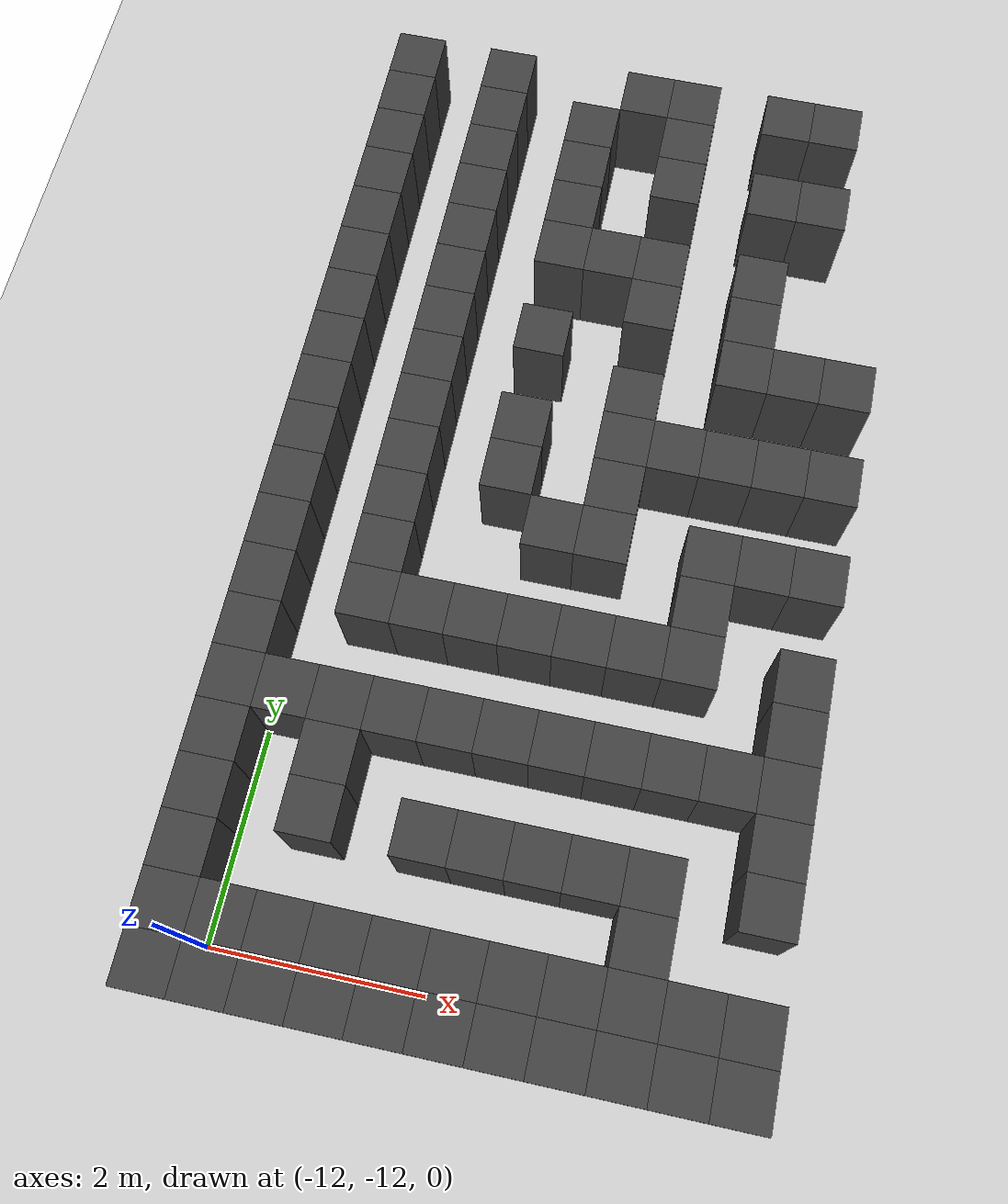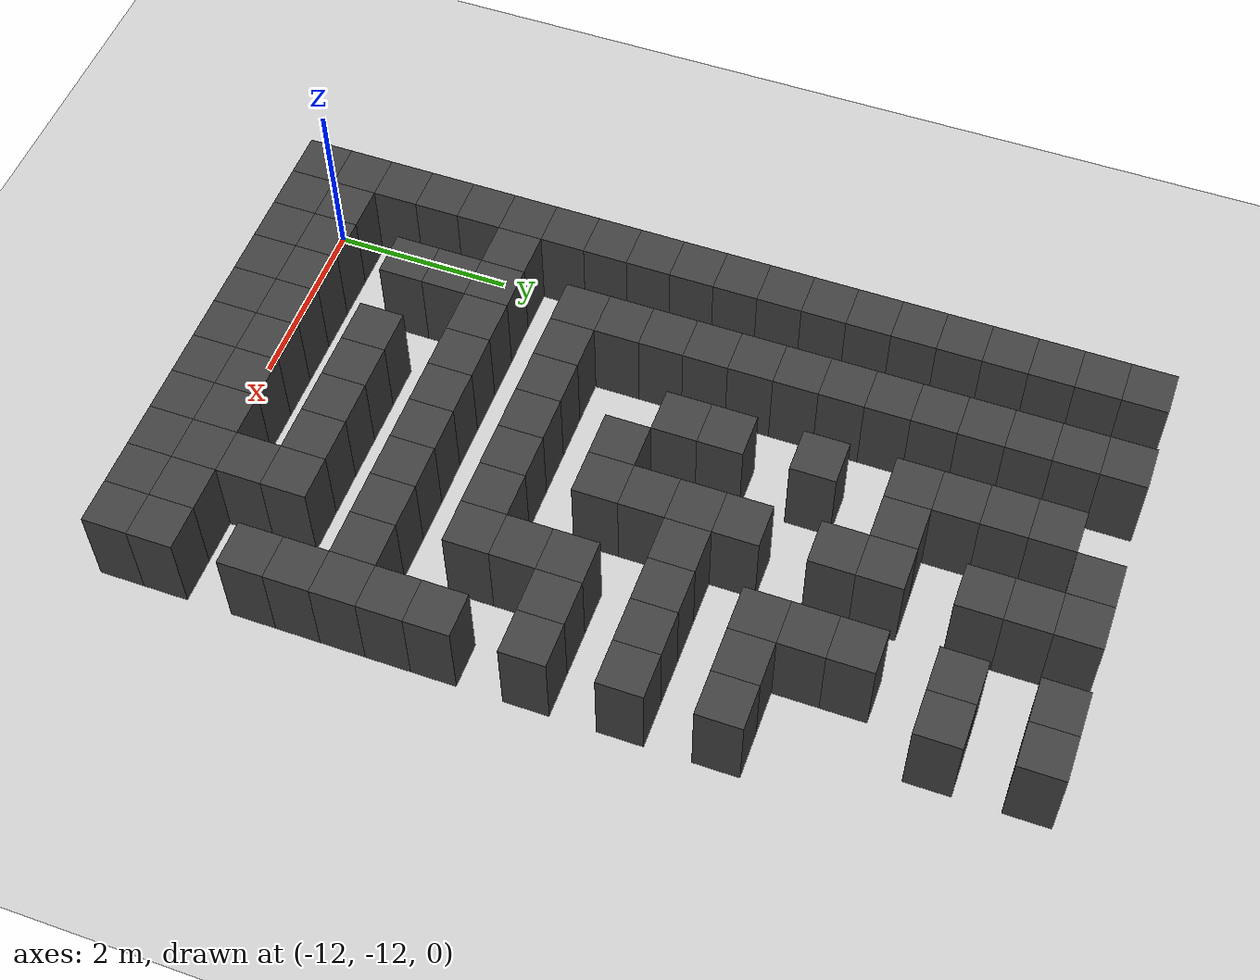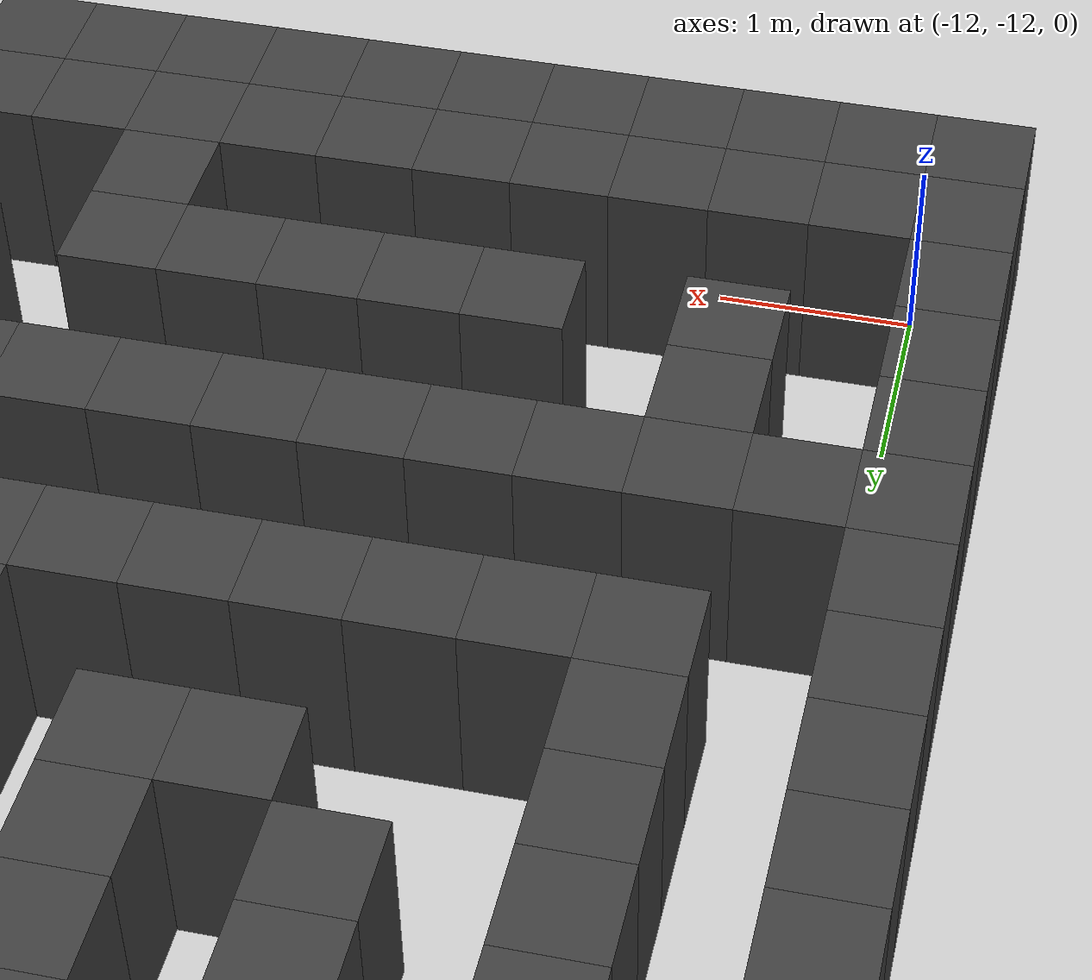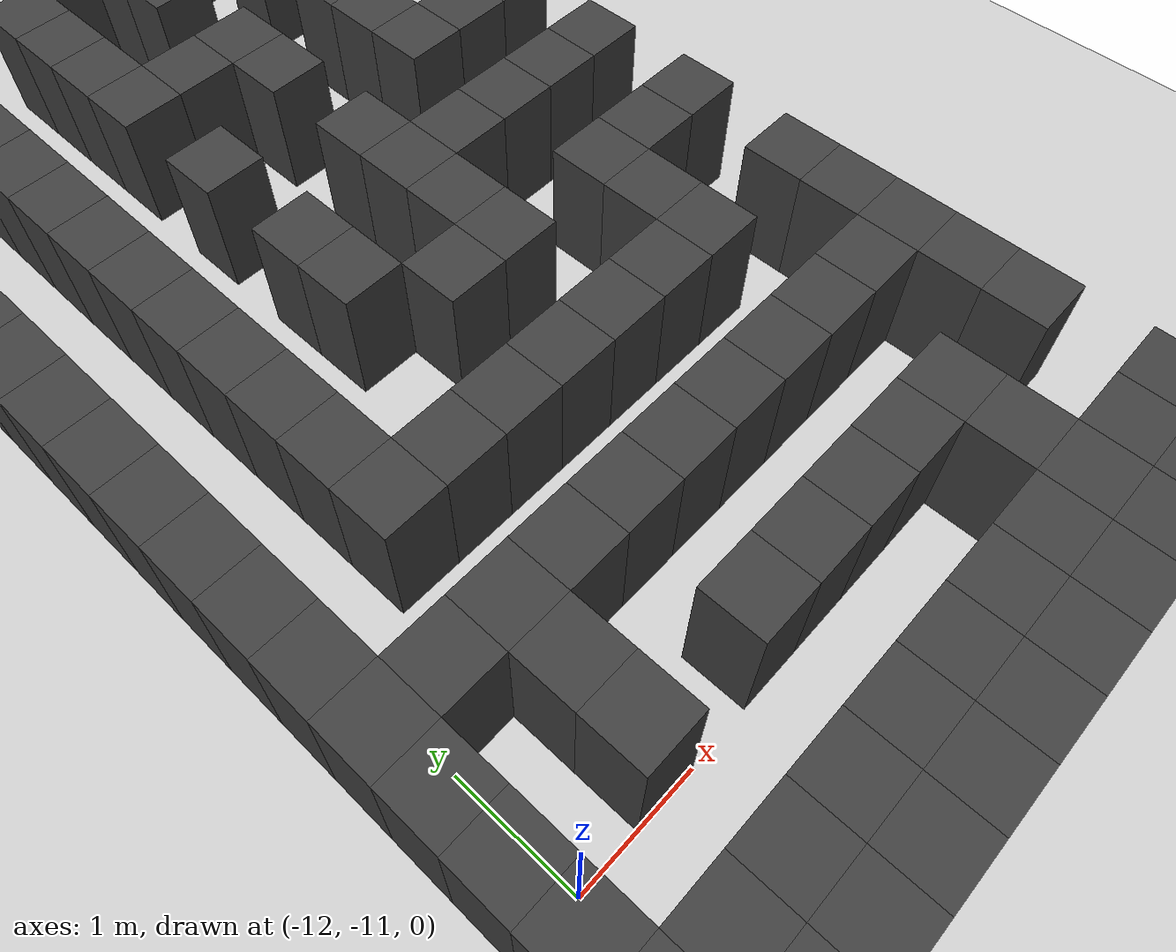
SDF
<sdf version="1.7">
 <world name="map_18313">
  <model name="ground_plane">
   <static>true</static>
   <link name="link">
    <collision name="collision">
     <geometry><plane><normal>0 0 1</normal><size>200 200</size></plane></geometry>
    </collision>
    <visual name="visual">
     <geometry><plane><normal>0 0 1</normal><size>200 200</size></plane></geometry>
     <material><ambient>0.8 0.8 0.8 1</ambient><diffuse>0.8 0.8 0.8 1</diffuse></material>
    </visual>
   </link>
  </model>
  <model name="maze_environment">
   <static>true</static>
   <link name="wall_754">
    <pose>-12.250 -2.750 0.500 0 0 0</pose>
    <collision name="col"><geometry><box><size>0.5 0.5 1.0</size></box></geometry></collision>
    <visual name="vis">
     <geometry><box><size>0.5 0.5 1.0</size></box></geometry>
     <material><ambient>0.15 0.15 0.15 1</ambient><diffuse>0.25 0.25 0.25 1</diffuse></material>
    </visual>
   </link>
   <link name="wall_755">
    <pose>-11.250 -2.750 0.500 0 0 0</pose>
    <collision name="col"><geometry><box><size>0.5 0.5 1.0</size></box></geometry></collision>
    <visual name="vis">
     <geometry><box><size>0.5 0.5 1.0</size></box></geometry>
     <material><ambient>0.15 0.15 0.15 1</ambient><diffuse>0.25 0.25 0.25 1</diffuse></material>
    </visual>
   </link>
   <link name="wall_756">
    <pose>-9.750 -2.750 0.500 0 0 0</pose>
    <collision name="col"><geometry><box><size>0.5 0.5 1.0</size></box></geometry></collision>
    <visual name="vis">
     <geometry><box><size>0.5 0.5 1.0</size></box></geometry>
     <material><ambient>0.15 0.15 0.15 1</ambient><diffuse>0.25 0.25 0.25 1</diffuse></material>
    </visual>
   </link>
   <link name="wall_757">
    <pose>-9.250 -2.750 0.500 0 0 0</pose>
    <collision name="col"><geometry><box><size>0.5 0.5 1.0</size></box></geometry></collision>
    <visual name="vis">
     <geometry><box><size>0.5 0.5 1.0</size></box></geometry>
     <material><ambient>0.15 0.15 0.15 1</ambient><diffuse>0.25 0.25 0.25 1</diffuse></material>
    </visual>
   </link>
   <link name="wall_758">
    <pose>-8.250 -2.750 0.500 0 0 0</pose>
    <collision name="col"><geometry><box><size>0.5 0.5 1.0</size></box></geometry></collision>
    <visual name="vis">
     <geometry><box><size>0.5 0.5 1.0</size></box></geometry>
     <material><ambient>0.15 0.15 0.15 1</ambient><diffuse>0.25 0.25 0.25 1</diffuse></material>
    </visual>
   </link>
   <link name="wall_759">
    <pose>-7.750 -2.750 0.500 0 0 0</pose>
    <collision name="col"><geometry><box><size>0.5 0.5 1.0</size></box></geometry></collision>
    <visual name="vis">
     <geometry><box><size>0.5 0.5 1.0</size></box></geometry>
     <material><ambient>0.15 0.15 0.15 1</ambient><diffuse>0.25 0.25 0.25 1</diffuse></material>
    </visual>
   </link>
   <link name="wall_792">
    <pose>-12.250 -3.250 0.500 0 0 0</pose>
    <collision name="col"><geometry><box><size>0.5 0.5 1.0</size></box></geometry></collision>
    <visual name="vis">
     <geometry><box><size>0.5 0.5 1.0</size></box></geometry>
     <material><ambient>0.15 0.15 0.15 1</ambient><diffuse>0.25 0.25 0.25 1</diffuse></material>
    </visual>
   </link>
   <link name="wall_793">
    <pose>-11.250 -3.250 0.500 0 0 0</pose>
    <collision name="col"><geometry><box><size>0.5 0.5 1.0</size></box></geometry></collision>
    <visual name="vis">
     <geometry><box><size>0.5 0.5 1.0</size></box></geometry>
     <material><ambient>0.15 0.15 0.15 1</ambient><diffuse>0.25 0.25 0.25 1</diffuse></material>
    </visual>
   </link>
   <link name="wall_794">
    <pose>-10.250 -3.250 0.500 0 0 0</pose>
    <collision name="col"><geometry><box><size>0.5 0.5 1.0</size></box></geometry></collision>
    <visual name="vis">
     <geometry><box><size>0.5 0.5 1.0</size></box></geometry>
     <material><ambient>0.15 0.15 0.15 1</ambient><diffuse>0.25 0.25 0.25 1</diffuse></material>
    </visual>
   </link>
   <link name="wall_795">
    <pose>-9.250 -3.250 0.500 0 0 0</pose>
    <collision name="col"><geometry><box><size>0.5 0.5 1.0</size></box></geometry></collision>
    <visual name="vis">
     <geometry><box><size>0.5 0.5 1.0</size></box></geometry>
     <material><ambient>0.15 0.15 0.15 1</ambient><diffuse>0.25 0.25 0.25 1</diffuse></material>
    </visual>
   </link>
   <link name="wall_805">
    <pose>-12.250 -3.750 0.500 0 0 0</pose>
    <collision name="col"><geometry><box><size>0.5 0.5 1.0</size></box></geometry></collision>
    <visual name="vis">
     <geometry><box><size>0.5 0.5 1.0</size></box></geometry>
     <material><ambient>0.15 0.15 0.15 1</ambient><diffuse>0.25 0.25 0.25 1</diffuse></material>
    </visual>
   </link>
   <link name="wall_806">
    <pose>-11.250 -3.750 0.500 0 0 0</pose>
    <collision name="col"><geometry><box><size>0.5 0.5 1.0</size></box></geometry></collision>
    <visual name="vis">
     <geometry><box><size>0.5 0.5 1.0</size></box></geometry>
     <material><ambient>0.15 0.15 0.15 1</ambient><diffuse>0.25 0.25 0.25 1</diffuse></material>
    </visual>
   </link>
   <link name="wall_807">
    <pose>-10.250 -3.750 0.500 0 0 0</pose>
    <collision name="col"><geometry><box><size>0.5 0.5 1.0</size></box></geometry></collision>
    <visual name="vis">
     <geometry><box><size>0.5 0.5 1.0</size></box></geometry>
     <material><ambient>0.15 0.15 0.15 1</ambient><diffuse>0.25 0.25 0.25 1</diffuse></material>
    </visual>
   </link>
   <link name="wall_808">
    <pose>-9.250 -3.750 0.500 0 0 0</pose>
    <collision name="col"><geometry><box><size>0.5 0.5 1.0</size></box></geometry></collision>
    <visual name="vis">
     <geometry><box><size>0.5 0.5 1.0</size></box></geometry>
     <material><ambient>0.15 0.15 0.15 1</ambient><diffuse>0.25 0.25 0.25 1</diffuse></material>
    </visual>
   </link>
   <link name="wall_809">
    <pose>-8.250 -3.750 0.500 0 0 0</pose>
    <collision name="col"><geometry><box><size>0.5 0.5 1.0</size></box></geometry></collision>
    <visual name="vis">
     <geometry><box><size>0.5 0.5 1.0</size></box></geometry>
     <material><ambient>0.15 0.15 0.15 1</ambient><diffuse>0.25 0.25 0.25 1</diffuse></material>
    </visual>
   </link>
   <link name="wall_810">
    <pose>-7.750 -3.750 0.500 0 0 0</pose>
    <collision name="col"><geometry><box><size>0.5 0.5 1.0</size></box></geometry></collision>
    <visual name="vis">
     <geometry><box><size>0.5 0.5 1.0</size></box></geometry>
     <material><ambient>0.15 0.15 0.15 1</ambient><diffuse>0.25 0.25 0.25 1</diffuse></material>
    </visual>
   </link>
   <link name="wall_841">
    <pose>-12.250 -4.250 0.500 0 0 0</pose>
    <collision name="col"><geometry><box><size>0.5 0.5 1.0</size></box></geometry></collision>
    <visual name="vis">
     <geometry><box><size>0.5 0.5 1.0</size></box></geometry>
     <material><ambient>0.15 0.15 0.15 1</ambient><diffuse>0.25 0.25 0.25 1</diffuse></material>
    </visual>
   </link>
   <link name="wall_842">
    <pose>-11.250 -4.250 0.500 0 0 0</pose>
    <collision name="col"><geometry><box><size>0.5 0.5 1.0</size></box></geometry></collision>
    <visual name="vis">
     <geometry><box><size>0.5 0.5 1.0</size></box></geometry>
     <material><ambient>0.15 0.15 0.15 1</ambient><diffuse>0.25 0.25 0.25 1</diffuse></material>
    </visual>
   </link>
   <link name="wall_843">
    <pose>-10.250 -4.250 0.500 0 0 0</pose>
    <collision name="col"><geometry><box><size>0.5 0.5 1.0</size></box></geometry></collision>
    <visual name="vis">
     <geometry><box><size>0.5 0.5 1.0</size></box></geometry>
     <material><ambient>0.15 0.15 0.15 1</ambient><diffuse>0.25 0.25 0.25 1</diffuse></material>
    </visual>
   </link>
   <link name="wall_855">
    <pose>-12.250 -4.750 0.500 0 0 0</pose>
    <collision name="col"><geometry><box><size>0.5 0.5 1.0</size></box></geometry></collision>
    <visual name="vis">
     <geometry><box><size>0.5 0.5 1.0</size></box></geometry>
     <material><ambient>0.15 0.15 0.15 1</ambient><diffuse>0.25 0.25 0.25 1</diffuse></material>
    </visual>
   </link>
   <link name="wall_856">
    <pose>-11.250 -4.750 0.500 0 0 0</pose>
    <collision name="col"><geometry><box><size>0.5 0.5 1.0</size></box></geometry></collision>
    <visual name="vis">
     <geometry><box><size>0.5 0.5 1.0</size></box></geometry>
     <material><ambient>0.15 0.15 0.15 1</ambient><diffuse>0.25 0.25 0.25 1</diffuse></material>
    </visual>
   </link>
   <link name="wall_857">
    <pose>-10.250 -4.750 0.500 0 0 0</pose>
    <collision name="col"><geometry><box><size>0.5 0.5 1.0</size></box></geometry></collision>
    <visual name="vis">
     <geometry><box><size>0.5 0.5 1.0</size></box></geometry>
     <material><ambient>0.15 0.15 0.15 1</ambient><diffuse>0.25 0.25 0.25 1</diffuse></material>
    </visual>
   </link>
   <link name="wall_858">
    <pose>-9.750 -4.750 0.500 0 0 0</pose>
    <collision name="col"><geometry><box><size>0.5 0.5 1.0</size></box></geometry></collision>
    <visual name="vis">
     <geometry><box><size>0.5 0.5 1.0</size></box></geometry>
     <material><ambient>0.15 0.15 0.15 1</ambient><diffuse>0.25 0.25 0.25 1</diffuse></material>
    </visual>
   </link>
   <link name="wall_859">
    <pose>-9.250 -4.750 0.500 0 0 0</pose>
    <collision name="col"><geometry><box><size>0.5 0.5 1.0</size></box></geometry></collision>
    <visual name="vis">
     <geometry><box><size>0.5 0.5 1.0</size></box></geometry>
     <material><ambient>0.15 0.15 0.15 1</ambient><diffuse>0.25 0.25 0.25 1</diffuse></material>
    </visual>
   </link>
   <link name="wall_860">
    <pose>-8.250 -4.750 0.500 0 0 0</pose>
    <collision name="col"><geometry><box><size>0.5 0.5 1.0</size></box></geometry></collision>
    <visual name="vis">
     <geometry><box><size>0.5 0.5 1.0</size></box></geometry>
     <material><ambient>0.15 0.15 0.15 1</ambient><diffuse>0.25 0.25 0.25 1</diffuse></material>
    </visual>
   </link>
   <link name="wall_889">
    <pose>-12.250 -5.250 0.500 0 0 0</pose>
    <collision name="col"><geometry><box><size>0.5 0.5 1.0</size></box></geometry></collision>
    <visual name="vis">
     <geometry><box><size>0.5 0.5 1.0</size></box></geometry>
     <material><ambient>0.15 0.15 0.15 1</ambient><diffuse>0.25 0.25 0.25 1</diffuse></material>
    </visual>
   </link>
   <link name="wall_890">
    <pose>-11.250 -5.250 0.500 0 0 0</pose>
    <collision name="col"><geometry><box><size>0.5 0.5 1.0</size></box></geometry></collision>
    <visual name="vis">
     <geometry><box><size>0.5 0.5 1.0</size></box></geometry>
     <material><ambient>0.15 0.15 0.15 1</ambient><diffuse>0.25 0.25 0.25 1</diffuse></material>
    </visual>
   </link>
   <link name="wall_891">
    <pose>-9.250 -5.250 0.500 0 0 0</pose>
    <collision name="col"><geometry><box><size>0.5 0.5 1.0</size></box></geometry></collision>
    <visual name="vis">
     <geometry><box><size>0.5 0.5 1.0</size></box></geometry>
     <material><ambient>0.15 0.15 0.15 1</ambient><diffuse>0.25 0.25 0.25 1</diffuse></material>
    </visual>
   </link>
   <link name="wall_892">
    <pose>-8.250 -5.250 0.500 0 0 0</pose>
    <collision name="col"><geometry><box><size>0.5 0.5 1.0</size></box></geometry></collision>
    <visual name="vis">
     <geometry><box><size>0.5 0.5 1.0</size></box></geometry>
     <material><ambient>0.15 0.15 0.15 1</ambient><diffuse>0.25 0.25 0.25 1</diffuse></material>
    </visual>
   </link>
   <link name="wall_905">
    <pose>-12.250 -5.750 0.500 0 0 0</pose>
    <collision name="col"><geometry><box><size>0.5 0.5 1.0</size></box></geometry></collision>
    <visual name="vis">
     <geometry><box><size>0.5 0.5 1.0</size></box></geometry>
     <material><ambient>0.15 0.15 0.15 1</ambient><diffuse>0.25 0.25 0.25 1</diffuse></material>
    </visual>
   </link>
   <link name="wall_906">
    <pose>-11.250 -5.750 0.500 0 0 0</pose>
    <collision name="col"><geometry><box><size>0.5 0.5 1.0</size></box></geometry></collision>
    <visual name="vis">
     <geometry><box><size>0.5 0.5 1.0</size></box></geometry>
     <material><ambient>0.15 0.15 0.15 1</ambient><diffuse>0.25 0.25 0.25 1</diffuse></material>
    </visual>
   </link>
   <link name="wall_907">
    <pose>-10.250 -5.750 0.500 0 0 0</pose>
    <collision name="col"><geometry><box><size>0.5 0.5 1.0</size></box></geometry></collision>
    <visual name="vis">
     <geometry><box><size>0.5 0.5 1.0</size></box></geometry>
     <material><ambient>0.15 0.15 0.15 1</ambient><diffuse>0.25 0.25 0.25 1</diffuse></material>
    </visual>
   </link>
   <link name="wall_908">
    <pose>-8.250 -5.750 0.500 0 0 0</pose>
    <collision name="col"><geometry><box><size>0.5 0.5 1.0</size></box></geometry></collision>
    <visual name="vis">
     <geometry><box><size>0.5 0.5 1.0</size></box></geometry>
     <material><ambient>0.15 0.15 0.15 1</ambient><diffuse>0.25 0.25 0.25 1</diffuse></material>
    </visual>
   </link>
   <link name="wall_909">
    <pose>-7.750 -5.750 0.500 0 0 0</pose>
    <collision name="col"><geometry><box><size>0.5 0.5 1.0</size></box></geometry></collision>
    <visual name="vis">
     <geometry><box><size>0.5 0.5 1.0</size></box></geometry>
     <material><ambient>0.15 0.15 0.15 1</ambient><diffuse>0.25 0.25 0.25 1</diffuse></material>
    </visual>
   </link>
   <link name="wall_910">
    <pose>-7.250 -5.750 0.500 0 0 0</pose>
    <collision name="col"><geometry><box><size>0.5 0.5 1.0</size></box></geometry></collision>
    <visual name="vis">
     <geometry><box><size>0.5 0.5 1.0</size></box></geometry>
     <material><ambient>0.15 0.15 0.15 1</ambient><diffuse>0.25 0.25 0.25 1</diffuse></material>
    </visual>
   </link>
   <link name="wall_941">
    <pose>-12.250 -6.250 0.500 0 0 0</pose>
    <collision name="col"><geometry><box><size>0.5 0.5 1.0</size></box></geometry></collision>
    <visual name="vis">
     <geometry><box><size>0.5 0.5 1.0</size></box></geometry>
     <material><ambient>0.15 0.15 0.15 1</ambient><diffuse>0.25 0.25 0.25 1</diffuse></material>
    </visual>
   </link>
   <link name="wall_942">
    <pose>-11.250 -6.250 0.500 0 0 0</pose>
    <collision name="col"><geometry><box><size>0.5 0.5 1.0</size></box></geometry></collision>
    <visual name="vis">
     <geometry><box><size>0.5 0.5 1.0</size></box></geometry>
     <material><ambient>0.15 0.15 0.15 1</ambient><diffuse>0.25 0.25 0.25 1</diffuse></material>
    </visual>
   </link>
   <link name="wall_943">
    <pose>-9.250 -6.250 0.500 0 0 0</pose>
    <collision name="col"><geometry><box><size>0.5 0.5 1.0</size></box></geometry></collision>
    <visual name="vis">
     <geometry><box><size>0.5 0.5 1.0</size></box></geometry>
     <material><ambient>0.15 0.15 0.15 1</ambient><diffuse>0.25 0.25 0.25 1</diffuse></material>
    </visual>
   </link>
   <link name="wall_954">
    <pose>-12.250 -6.750 0.500 0 0 0</pose>
    <collision name="col"><geometry><box><size>0.5 0.5 1.0</size></box></geometry></collision>
    <visual name="vis">
     <geometry><box><size>0.5 0.5 1.0</size></box></geometry>
     <material><ambient>0.15 0.15 0.15 1</ambient><diffuse>0.25 0.25 0.25 1</diffuse></material>
    </visual>
   </link>
   <link name="wall_955">
    <pose>-11.250 -6.750 0.500 0 0 0</pose>
    <collision name="col"><geometry><box><size>0.5 0.5 1.0</size></box></geometry></collision>
    <visual name="vis">
     <geometry><box><size>0.5 0.5 1.0</size></box></geometry>
     <material><ambient>0.15 0.15 0.15 1</ambient><diffuse>0.25 0.25 0.25 1</diffuse></material>
    </visual>
   </link>
   <link name="wall_956">
    <pose>-10.250 -6.750 0.500 0 0 0</pose>
    <collision name="col"><geometry><box><size>0.5 0.5 1.0</size></box></geometry></collision>
    <visual name="vis">
     <geometry><box><size>0.5 0.5 1.0</size></box></geometry>
     <material><ambient>0.15 0.15 0.15 1</ambient><diffuse>0.25 0.25 0.25 1</diffuse></material>
    </visual>
   </link>
   <link name="wall_957">
    <pose>-9.250 -6.750 0.500 0 0 0</pose>
    <collision name="col"><geometry><box><size>0.5 0.5 1.0</size></box></geometry></collision>
    <visual name="vis">
     <geometry><box><size>0.5 0.5 1.0</size></box></geometry>
     <material><ambient>0.15 0.15 0.15 1</ambient><diffuse>0.25 0.25 0.25 1</diffuse></material>
    </visual>
   </link>
   <link name="wall_958">
    <pose>-8.750 -6.750 0.500 0 0 0</pose>
    <collision name="col"><geometry><box><size>0.5 0.5 1.0</size></box></geometry></collision>
    <visual name="vis">
     <geometry><box><size>0.5 0.5 1.0</size></box></geometry>
     <material><ambient>0.15 0.15 0.15 1</ambient><diffuse>0.25 0.25 0.25 1</diffuse></material>
    </visual>
   </link>
   <link name="wall_959">
    <pose>-8.250 -6.750 0.500 0 0 0</pose>
    <collision name="col"><geometry><box><size>0.5 0.5 1.0</size></box></geometry></collision>
    <visual name="vis">
     <geometry><box><size>0.5 0.5 1.0</size></box></geometry>
     <material><ambient>0.15 0.15 0.15 1</ambient><diffuse>0.25 0.25 0.25 1</diffuse></material>
    </visual>
   </link>
   <link name="wall_960">
    <pose>-7.750 -6.750 0.500 0 0 0</pose>
    <collision name="col"><geometry><box><size>0.5 0.5 1.0</size></box></geometry></collision>
    <visual name="vis">
     <geometry><box><size>0.5 0.5 1.0</size></box></geometry>
     <material><ambient>0.15 0.15 0.15 1</ambient><diffuse>0.25 0.25 0.25 1</diffuse></material>
    </visual>
   </link>
   <link name="wall_961">
    <pose>-7.250 -6.750 0.500 0 0 0</pose>
    <collision name="col"><geometry><box><size>0.5 0.5 1.0</size></box></geometry></collision>
    <visual name="vis">
     <geometry><box><size>0.5 0.5 1.0</size></box></geometry>
     <material><ambient>0.15 0.15 0.15 1</ambient><diffuse>0.25 0.25 0.25 1</diffuse></material>
    </visual>
   </link>
   <link name="wall_988">
    <pose>-12.250 -7.250 0.500 0 0 0</pose>
    <collision name="col"><geometry><box><size>0.5 0.5 1.0</size></box></geometry></collision>
    <visual name="vis">
     <geometry><box><size>0.5 0.5 1.0</size></box></geometry>
     <material><ambient>0.15 0.15 0.15 1</ambient><diffuse>0.25 0.25 0.25 1</diffuse></material>
    </visual>
   </link>
   <link name="wall_989">
    <pose>-11.250 -7.250 0.500 0 0 0</pose>
    <collision name="col"><geometry><box><size>0.5 0.5 1.0</size></box></geometry></collision>
    <visual name="vis">
     <geometry><box><size>0.5 0.5 1.0</size></box></geometry>
     <material><ambient>0.15 0.15 0.15 1</ambient><diffuse>0.25 0.25 0.25 1</diffuse></material>
    </visual>
   </link>
   <link name="wall_990">
    <pose>-10.250 -7.250 0.500 0 0 0</pose>
    <collision name="col"><geometry><box><size>0.5 0.5 1.0</size></box></geometry></collision>
    <visual name="vis">
     <geometry><box><size>0.5 0.5 1.0</size></box></geometry>
     <material><ambient>0.15 0.15 0.15 1</ambient><diffuse>0.25 0.25 0.25 1</diffuse></material>
    </visual>
   </link>
   <link name="wall_991">
    <pose>-9.250 -7.250 0.500 0 0 0</pose>
    <collision name="col"><geometry><box><size>0.5 0.5 1.0</size></box></geometry></collision>
    <visual name="vis">
     <geometry><box><size>0.5 0.5 1.0</size></box></geometry>
     <material><ambient>0.15 0.15 0.15 1</ambient><diffuse>0.25 0.25 0.25 1</diffuse></material>
    </visual>
   </link>
   <link name="wall_1003">
    <pose>-12.250 -7.750 0.500 0 0 0</pose>
    <collision name="col"><geometry><box><size>0.5 0.5 1.0</size></box></geometry></collision>
    <visual name="vis">
     <geometry><box><size>0.5 0.5 1.0</size></box></geometry>
     <material><ambient>0.15 0.15 0.15 1</ambient><diffuse>0.25 0.25 0.25 1</diffuse></material>
    </visual>
   </link>
   <link name="wall_1004">
    <pose>-11.250 -7.750 0.500 0 0 0</pose>
    <collision name="col"><geometry><box><size>0.5 0.5 1.0</size></box></geometry></collision>
    <visual name="vis">
     <geometry><box><size>0.5 0.5 1.0</size></box></geometry>
     <material><ambient>0.15 0.15 0.15 1</ambient><diffuse>0.25 0.25 0.25 1</diffuse></material>
    </visual>
   </link>
   <link name="wall_1005">
    <pose>-9.750 -7.750 0.500 0 0 0</pose>
    <collision name="col"><geometry><box><size>0.5 0.5 1.0</size></box></geometry></collision>
    <visual name="vis">
     <geometry><box><size>0.5 0.5 1.0</size></box></geometry>
     <material><ambient>0.15 0.15 0.15 1</ambient><diffuse>0.25 0.25 0.25 1</diffuse></material>
    </visual>
   </link>
   <link name="wall_1006">
    <pose>-9.250 -7.750 0.500 0 0 0</pose>
    <collision name="col"><geometry><box><size>0.5 0.5 1.0</size></box></geometry></collision>
    <visual name="vis">
     <geometry><box><size>0.5 0.5 1.0</size></box></geometry>
     <material><ambient>0.15 0.15 0.15 1</ambient><diffuse>0.25 0.25 0.25 1</diffuse></material>
    </visual>
   </link>
   <link name="wall_1007">
    <pose>-8.250 -7.750 0.500 0 0 0</pose>
    <collision name="col"><geometry><box><size>0.5 0.5 1.0</size></box></geometry></collision>
    <visual name="vis">
     <geometry><box><size>0.5 0.5 1.0</size></box></geometry>
     <material><ambient>0.15 0.15 0.15 1</ambient><diffuse>0.25 0.25 0.25 1</diffuse></material>
    </visual>
   </link>
   <link name="wall_1008">
    <pose>-7.750 -7.750 0.500 0 0 0</pose>
    <collision name="col"><geometry><box><size>0.5 0.5 1.0</size></box></geometry></collision>
    <visual name="vis">
     <geometry><box><size>0.5 0.5 1.0</size></box></geometry>
     <material><ambient>0.15 0.15 0.15 1</ambient><diffuse>0.25 0.25 0.25 1</diffuse></material>
    </visual>
   </link>
   <link name="wall_1009">
    <pose>-7.250 -7.750 0.500 0 0 0</pose>
    <collision name="col"><geometry><box><size>0.5 0.5 1.0</size></box></geometry></collision>
    <visual name="vis">
     <geometry><box><size>0.5 0.5 1.0</size></box></geometry>
     <material><ambient>0.15 0.15 0.15 1</ambient><diffuse>0.25 0.25 0.25 1</diffuse></material>
    </visual>
   </link>
   <link name="wall_1037">
    <pose>-12.250 -8.250 0.500 0 0 0</pose>
    <collision name="col"><geometry><box><size>0.5 0.5 1.0</size></box></geometry></collision>
    <visual name="vis">
     <geometry><box><size>0.5 0.5 1.0</size></box></geometry>
     <material><ambient>0.15 0.15 0.15 1</ambient><diffuse>0.25 0.25 0.25 1</diffuse></material>
    </visual>
   </link>
   <link name="wall_1038">
    <pose>-11.250 -8.250 0.500 0 0 0</pose>
    <collision name="col"><geometry><box><size>0.5 0.5 1.0</size></box></geometry></collision>
    <visual name="vis">
     <geometry><box><size>0.5 0.5 1.0</size></box></geometry>
     <material><ambient>0.15 0.15 0.15 1</ambient><diffuse>0.25 0.25 0.25 1</diffuse></material>
    </visual>
   </link>
   <link name="wall_1039">
    <pose>-8.250 -8.250 0.500 0 0 0</pose>
    <collision name="col"><geometry><box><size>0.5 0.5 1.0</size></box></geometry></collision>
    <visual name="vis">
     <geometry><box><size>0.5 0.5 1.0</size></box></geometry>
     <material><ambient>0.15 0.15 0.15 1</ambient><diffuse>0.25 0.25 0.25 1</diffuse></material>
    </visual>
   </link>
   <link name="wall_1051">
    <pose>-12.250 -8.750 0.500 0 0 0</pose>
    <collision name="col"><geometry><box><size>0.5 0.5 1.0</size></box></geometry></collision>
    <visual name="vis">
     <geometry><box><size>0.5 0.5 1.0</size></box></geometry>
     <material><ambient>0.15 0.15 0.15 1</ambient><diffuse>0.25 0.25 0.25 1</diffuse></material>
    </visual>
   </link>
   <link name="wall_1052">
    <pose>-11.250 -8.750 0.500 0 0 0</pose>
    <collision name="col"><geometry><box><size>0.5 0.5 1.0</size></box></geometry></collision>
    <visual name="vis">
     <geometry><box><size>0.5 0.5 1.0</size></box></geometry>
     <material><ambient>0.15 0.15 0.15 1</ambient><diffuse>0.25 0.25 0.25 1</diffuse></material>
    </visual>
   </link>
   <link name="wall_1053">
    <pose>-10.750 -8.750 0.500 0 0 0</pose>
    <collision name="col"><geometry><box><size>0.5 0.5 1.0</size></box></geometry></collision>
    <visual name="vis">
     <geometry><box><size>0.5 0.5 1.0</size></box></geometry>
     <material><ambient>0.15 0.15 0.15 1</ambient><diffuse>0.25 0.25 0.25 1</diffuse></material>
    </visual>
   </link>
   <link name="wall_1054">
    <pose>-10.250 -8.750 0.500 0 0 0</pose>
    <collision name="col"><geometry><box><size>0.5 0.5 1.0</size></box></geometry></collision>
    <visual name="vis">
     <geometry><box><size>0.5 0.5 1.0</size></box></geometry>
     <material><ambient>0.15 0.15 0.15 1</ambient><diffuse>0.25 0.25 0.25 1</diffuse></material>
    </visual>
   </link>
   <link name="wall_1055">
    <pose>-9.750 -8.750 0.500 0 0 0</pose>
    <collision name="col"><geometry><box><size>0.5 0.5 1.0</size></box></geometry></collision>
    <visual name="vis">
     <geometry><box><size>0.5 0.5 1.0</size></box></geometry>
     <material><ambient>0.15 0.15 0.15 1</ambient><diffuse>0.25 0.25 0.25 1</diffuse></material>
    </visual>
   </link>
   <link name="wall_1056">
    <pose>-9.250 -8.750 0.500 0 0 0</pose>
    <collision name="col"><geometry><box><size>0.5 0.5 1.0</size></box></geometry></collision>
    <visual name="vis">
     <geometry><box><size>0.5 0.5 1.0</size></box></geometry>
     <material><ambient>0.15 0.15 0.15 1</ambient><diffuse>0.25 0.25 0.25 1</diffuse></material>
    </visual>
   </link>
   <link name="wall_1057">
    <pose>-8.750 -8.750 0.500 0 0 0</pose>
    <collision name="col"><geometry><box><size>0.5 0.5 1.0</size></box></geometry></collision>
    <visual name="vis">
     <geometry><box><size>0.5 0.5 1.0</size></box></geometry>
     <material><ambient>0.15 0.15 0.15 1</ambient><diffuse>0.25 0.25 0.25 1</diffuse></material>
    </visual>
   </link>
   <link name="wall_1058">
    <pose>-8.250 -8.750 0.500 0 0 0</pose>
    <collision name="col"><geometry><box><size>0.5 0.5 1.0</size></box></geometry></collision>
    <visual name="vis">
     <geometry><box><size>0.5 0.5 1.0</size></box></geometry>
     <material><ambient>0.15 0.15 0.15 1</ambient><diffuse>0.25 0.25 0.25 1</diffuse></material>
    </visual>
   </link>
   <link name="wall_1059">
    <pose>-7.250 -8.750 0.500 0 0 0</pose>
    <collision name="col"><geometry><box><size>0.5 0.5 1.0</size></box></geometry></collision>
    <visual name="vis">
     <geometry><box><size>0.5 0.5 1.0</size></box></geometry>
     <material><ambient>0.15 0.15 0.15 1</ambient><diffuse>0.25 0.25 0.25 1</diffuse></material>
    </visual>
   </link>
   <link name="wall_1085">
    <pose>-12.250 -9.250 0.500 0 0 0</pose>
    <collision name="col"><geometry><box><size>0.5 0.5 1.0</size></box></geometry></collision>
    <visual name="vis">
     <geometry><box><size>0.5 0.5 1.0</size></box></geometry>
     <material><ambient>0.15 0.15 0.15 1</ambient><diffuse>0.25 0.25 0.25 1</diffuse></material>
    </visual>
   </link>
   <link name="wall_1086">
    <pose>-7.250 -9.250 0.500 0 0 0</pose>
    <collision name="col"><geometry><box><size>0.5 0.5 1.0</size></box></geometry></collision>
    <visual name="vis">
     <geometry><box><size>0.5 0.5 1.0</size></box></geometry>
     <material><ambient>0.15 0.15 0.15 1</ambient><diffuse>0.25 0.25 0.25 1</diffuse></material>
    </visual>
   </link>
   <link name="wall_1099">
    <pose>-12.250 -9.750 0.500 0 0 0</pose>
    <collision name="col"><geometry><box><size>0.5 0.5 1.0</size></box></geometry></collision>
    <visual name="vis">
     <geometry><box><size>0.5 0.5 1.0</size></box></geometry>
     <material><ambient>0.15 0.15 0.15 1</ambient><diffuse>0.25 0.25 0.25 1</diffuse></material>
    </visual>
   </link>
   <link name="wall_1100">
    <pose>-11.750 -9.750 0.500 0 0 0</pose>
    <collision name="col"><geometry><box><size>0.5 0.5 1.0</size></box></geometry></collision>
    <visual name="vis">
     <geometry><box><size>0.5 0.5 1.0</size></box></geometry>
     <material><ambient>0.15 0.15 0.15 1</ambient><diffuse>0.25 0.25 0.25 1</diffuse></material>
    </visual>
   </link>
   <link name="wall_1101">
    <pose>-11.250 -9.750 0.500 0 0 0</pose>
    <collision name="col"><geometry><box><size>0.5 0.5 1.0</size></box></geometry></collision>
    <visual name="vis">
     <geometry><box><size>0.5 0.5 1.0</size></box></geometry>
     <material><ambient>0.15 0.15 0.15 1</ambient><diffuse>0.25 0.25 0.25 1</diffuse></material>
    </visual>
   </link>
   <link name="wall_1102">
    <pose>-10.750 -9.750 0.500 0 0 0</pose>
    <collision name="col"><geometry><box><size>0.5 0.5 1.0</size></box></geometry></collision>
    <visual name="vis">
     <geometry><box><size>0.5 0.5 1.0</size></box></geometry>
     <material><ambient>0.15 0.15 0.15 1</ambient><diffuse>0.25 0.25 0.25 1</diffuse></material>
    </visual>
   </link>
   <link name="wall_1103">
    <pose>-10.250 -9.750 0.500 0 0 0</pose>
    <collision name="col"><geometry><box><size>0.5 0.5 1.0</size></box></geometry></collision>
    <visual name="vis">
     <geometry><box><size>0.5 0.5 1.0</size></box></geometry>
     <material><ambient>0.15 0.15 0.15 1</ambient><diffuse>0.25 0.25 0.25 1</diffuse></material>
    </visual>
   </link>
   <link name="wall_1104">
    <pose>-9.750 -9.750 0.500 0 0 0</pose>
    <collision name="col"><geometry><box><size>0.5 0.5 1.0</size></box></geometry></collision>
    <visual name="vis">
     <geometry><box><size>0.5 0.5 1.0</size></box></geometry>
     <material><ambient>0.15 0.15 0.15 1</ambient><diffuse>0.25 0.25 0.25 1</diffuse></material>
    </visual>
   </link>
   <link name="wall_1105">
    <pose>-9.250 -9.750 0.500 0 0 0</pose>
    <collision name="col"><geometry><box><size>0.5 0.5 1.0</size></box></geometry></collision>
    <visual name="vis">
     <geometry><box><size>0.5 0.5 1.0</size></box></geometry>
     <material><ambient>0.15 0.15 0.15 1</ambient><diffuse>0.25 0.25 0.25 1</diffuse></material>
    </visual>
   </link>
   <link name="wall_1106">
    <pose>-8.750 -9.750 0.500 0 0 0</pose>
    <collision name="col"><geometry><box><size>0.5 0.5 1.0</size></box></geometry></collision>
    <visual name="vis">
     <geometry><box><size>0.5 0.5 1.0</size></box></geometry>
     <material><ambient>0.15 0.15 0.15 1</ambient><diffuse>0.25 0.25 0.25 1</diffuse></material>
    </visual>
   </link>
   <link name="wall_1107">
    <pose>-8.250 -9.750 0.500 0 0 0</pose>
    <collision name="col"><geometry><box><size>0.5 0.5 1.0</size></box></geometry></collision>
    <visual name="vis">
     <geometry><box><size>0.5 0.5 1.0</size></box></geometry>
     <material><ambient>0.15 0.15 0.15 1</ambient><diffuse>0.25 0.25 0.25 1</diffuse></material>
    </visual>
   </link>
   <link name="wall_1108">
    <pose>-7.750 -9.750 0.500 0 0 0</pose>
    <collision name="col"><geometry><box><size>0.5 0.5 1.0</size></box></geometry></collision>
    <visual name="vis">
     <geometry><box><size>0.5 0.5 1.0</size></box></geometry>
     <material><ambient>0.15 0.15 0.15 1</ambient><diffuse>0.25 0.25 0.25 1</diffuse></material>
    </visual>
   </link>
   <link name="wall_1109">
    <pose>-7.250 -9.750 0.500 0 0 0</pose>
    <collision name="col"><geometry><box><size>0.5 0.5 1.0</size></box></geometry></collision>
    <visual name="vis">
     <geometry><box><size>0.5 0.5 1.0</size></box></geometry>
     <material><ambient>0.15 0.15 0.15 1</ambient><diffuse>0.25 0.25 0.25 1</diffuse></material>
    </visual>
   </link>
   <link name="wall_1139">
    <pose>-12.250 -10.250 0.500 0 0 0</pose>
    <collision name="col"><geometry><box><size>0.5 0.5 1.0</size></box></geometry></collision>
    <visual name="vis">
     <geometry><box><size>0.5 0.5 1.0</size></box></geometry>
     <material><ambient>0.15 0.15 0.15 1</ambient><diffuse>0.25 0.25 0.25 1</diffuse></material>
    </visual>
   </link>
   <link name="wall_1140">
    <pose>-11.250 -10.250 0.500 0 0 0</pose>
    <collision name="col"><geometry><box><size>0.5 0.5 1.0</size></box></geometry></collision>
    <visual name="vis">
     <geometry><box><size>0.5 0.5 1.0</size></box></geometry>
     <material><ambient>0.15 0.15 0.15 1</ambient><diffuse>0.25 0.25 0.25 1</diffuse></material>
    </visual>
   </link>
   <link name="wall_1141">
    <pose>-7.250 -10.250 0.500 0 0 0</pose>
    <collision name="col"><geometry><box><size>0.5 0.5 1.0</size></box></geometry></collision>
    <visual name="vis">
     <geometry><box><size>0.5 0.5 1.0</size></box></geometry>
     <material><ambient>0.15 0.15 0.15 1</ambient><diffuse>0.25 0.25 0.25 1</diffuse></material>
    </visual>
   </link>
   <link name="wall_1152">
    <pose>-12.250 -10.750 0.500 0 0 0</pose>
    <collision name="col"><geometry><box><size>0.5 0.5 1.0</size></box></geometry></collision>
    <visual name="vis">
     <geometry><box><size>0.5 0.5 1.0</size></box></geometry>
     <material><ambient>0.15 0.15 0.15 1</ambient><diffuse>0.25 0.25 0.25 1</diffuse></material>
    </visual>
   </link>
   <link name="wall_1153">
    <pose>-11.250 -10.750 0.500 0 0 0</pose>
    <collision name="col"><geometry><box><size>0.5 0.5 1.0</size></box></geometry></collision>
    <visual name="vis">
     <geometry><box><size>0.5 0.5 1.0</size></box></geometry>
     <material><ambient>0.15 0.15 0.15 1</ambient><diffuse>0.25 0.25 0.25 1</diffuse></material>
    </visual>
   </link>
   <link name="wall_1154">
    <pose>-10.250 -10.750 0.500 0 0 0</pose>
    <collision name="col"><geometry><box><size>0.5 0.5 1.0</size></box></geometry></collision>
    <visual name="vis">
     <geometry><box><size>0.5 0.5 1.0</size></box></geometry>
     <material><ambient>0.15 0.15 0.15 1</ambient><diffuse>0.25 0.25 0.25 1</diffuse></material>
    </visual>
   </link>
   <link name="wall_1155">
    <pose>-9.750 -10.750 0.500 0 0 0</pose>
    <collision name="col"><geometry><box><size>0.5 0.5 1.0</size></box></geometry></collision>
    <visual name="vis">
     <geometry><box><size>0.5 0.5 1.0</size></box></geometry>
     <material><ambient>0.15 0.15 0.15 1</ambient><diffuse>0.25 0.25 0.25 1</diffuse></material>
    </visual>
   </link>
   <link name="wall_1156">
    <pose>-9.250 -10.750 0.500 0 0 0</pose>
    <collision name="col"><geometry><box><size>0.5 0.5 1.0</size></box></geometry></collision>
    <visual name="vis">
     <geometry><box><size>0.5 0.5 1.0</size></box></geometry>
     <material><ambient>0.15 0.15 0.15 1</ambient><diffuse>0.25 0.25 0.25 1</diffuse></material>
    </visual>
   </link>
   <link name="wall_1157">
    <pose>-8.750 -10.750 0.500 0 0 0</pose>
    <collision name="col"><geometry><box><size>0.5 0.5 1.0</size></box></geometry></collision>
    <visual name="vis">
     <geometry><box><size>0.5 0.5 1.0</size></box></geometry>
     <material><ambient>0.15 0.15 0.15 1</ambient><diffuse>0.25 0.25 0.25 1</diffuse></material>
    </visual>
   </link>
   <link name="wall_1158">
    <pose>-8.250 -10.750 0.500 0 0 0</pose>
    <collision name="col"><geometry><box><size>0.5 0.5 1.0</size></box></geometry></collision>
    <visual name="vis">
     <geometry><box><size>0.5 0.5 1.0</size></box></geometry>
     <material><ambient>0.15 0.15 0.15 1</ambient><diffuse>0.25 0.25 0.25 1</diffuse></material>
    </visual>
   </link>
   <link name="wall_1159">
    <pose>-7.250 -10.750 0.500 0 0 0</pose>
    <collision name="col"><geometry><box><size>0.5 0.5 1.0</size></box></geometry></collision>
    <visual name="vis">
     <geometry><box><size>0.5 0.5 1.0</size></box></geometry>
     <material><ambient>0.15 0.15 0.15 1</ambient><diffuse>0.25 0.25 0.25 1</diffuse></material>
    </visual>
   </link>
   <link name="wall_1188">
    <pose>-12.250 -11.250 0.500 0 0 0</pose>
    <collision name="col"><geometry><box><size>0.5 0.5 1.0</size></box></geometry></collision>
    <visual name="vis">
     <geometry><box><size>0.5 0.5 1.0</size></box></geometry>
     <material><ambient>0.15 0.15 0.15 1</ambient><diffuse>0.25 0.25 0.25 1</diffuse></material>
    </visual>
   </link>
   <link name="wall_1189">
    <pose>-8.250 -11.250 0.500 0 0 0</pose>
    <collision name="col"><geometry><box><size>0.5 0.5 1.0</size></box></geometry></collision>
    <visual name="vis">
     <geometry><box><size>0.5 0.5 1.0</size></box></geometry>
     <material><ambient>0.15 0.15 0.15 1</ambient><diffuse>0.25 0.25 0.25 1</diffuse></material>
    </visual>
   </link>
   <link name="wall_1195">
    <pose>-12.250 -11.750 0.500 0 0 0</pose>
    <collision name="col"><geometry><box><size>0.5 0.5 1.0</size></box></geometry></collision>
    <visual name="vis">
     <geometry><box><size>0.5 0.5 1.0</size></box></geometry>
     <material><ambient>0.15 0.15 0.15 1</ambient><diffuse>0.25 0.25 0.25 1</diffuse></material>
    </visual>
   </link>
   <link name="wall_1196">
    <pose>-11.750 -11.750 0.500 0 0 0</pose>
    <collision name="col"><geometry><box><size>0.5 0.5 1.0</size></box></geometry></collision>
    <visual name="vis">
     <geometry><box><size>0.5 0.5 1.0</size></box></geometry>
     <material><ambient>0.15 0.15 0.15 1</ambient><diffuse>0.25 0.25 0.25 1</diffuse></material>
    </visual>
   </link>
   <link name="wall_1197">
    <pose>-11.250 -11.750 0.500 0 0 0</pose>
    <collision name="col"><geometry><box><size>0.5 0.5 1.0</size></box></geometry></collision>
    <visual name="vis">
     <geometry><box><size>0.5 0.5 1.0</size></box></geometry>
     <material><ambient>0.15 0.15 0.15 1</ambient><diffuse>0.25 0.25 0.25 1</diffuse></material>
    </visual>
   </link>
   <link name="wall_1198">
    <pose>-10.750 -11.750 0.500 0 0 0</pose>
    <collision name="col"><geometry><box><size>0.5 0.5 1.0</size></box></geometry></collision>
    <visual name="vis">
     <geometry><box><size>0.5 0.5 1.0</size></box></geometry>
     <material><ambient>0.15 0.15 0.15 1</ambient><diffuse>0.25 0.25 0.25 1</diffuse></material>
    </visual>
   </link>
   <link name="wall_1199">
    <pose>-10.250 -11.750 0.500 0 0 0</pose>
    <collision name="col"><geometry><box><size>0.5 0.5 1.0</size></box></geometry></collision>
    <visual name="vis">
     <geometry><box><size>0.5 0.5 1.0</size></box></geometry>
     <material><ambient>0.15 0.15 0.15 1</ambient><diffuse>0.25 0.25 0.25 1</diffuse></material>
    </visual>
   </link>
   <link name="wall_1200">
    <pose>-9.750 -11.750 0.500 0 0 0</pose>
    <collision name="col"><geometry><box><size>0.5 0.5 1.0</size></box></geometry></collision>
    <visual name="vis">
     <geometry><box><size>0.5 0.5 1.0</size></box></geometry>
     <material><ambient>0.15 0.15 0.15 1</ambient><diffuse>0.25 0.25 0.25 1</diffuse></material>
    </visual>
   </link>
   <link name="wall_1201">
    <pose>-9.250 -11.750 0.500 0 0 0</pose>
    <collision name="col"><geometry><box><size>0.5 0.5 1.0</size></box></geometry></collision>
    <visual name="vis">
     <geometry><box><size>0.5 0.5 1.0</size></box></geometry>
     <material><ambient>0.15 0.15 0.15 1</ambient><diffuse>0.25 0.25 0.25 1</diffuse></material>
    </visual>
   </link>
   <link name="wall_1202">
    <pose>-8.750 -11.750 0.500 0 0 0</pose>
    <collision name="col"><geometry><box><size>0.5 0.5 1.0</size></box></geometry></collision>
    <visual name="vis">
     <geometry><box><size>0.5 0.5 1.0</size></box></geometry>
     <material><ambient>0.15 0.15 0.15 1</ambient><diffuse>0.25 0.25 0.25 1</diffuse></material>
    </visual>
   </link>
   <link name="wall_1203">
    <pose>-8.250 -11.750 0.500 0 0 0</pose>
    <collision name="col"><geometry><box><size>0.5 0.5 1.0</size></box></geometry></collision>
    <visual name="vis">
     <geometry><box><size>0.5 0.5 1.0</size></box></geometry>
     <material><ambient>0.15 0.15 0.15 1</ambient><diffuse>0.25 0.25 0.25 1</diffuse></material>
    </visual>
   </link>
   <link name="wall_1204">
    <pose>-7.750 -11.750 0.500 0 0 0</pose>
    <collision name="col"><geometry><box><size>0.5 0.5 1.0</size></box></geometry></collision>
    <visual name="vis">
     <geometry><box><size>0.5 0.5 1.0</size></box></geometry>
     <material><ambient>0.15 0.15 0.15 1</ambient><diffuse>0.25 0.25 0.25 1</diffuse></material>
    </visual>
   </link>
   <link name="wall_1205">
    <pose>-7.250 -11.750 0.500 0 0 0</pose>
    <collision name="col"><geometry><box><size>0.5 0.5 1.0</size></box></geometry></collision>
    <visual name="vis">
     <geometry><box><size>0.5 0.5 1.0</size></box></geometry>
     <material><ambient>0.15 0.15 0.15 1</ambient><diffuse>0.25 0.25 0.25 1</diffuse></material>
    </visual>
   </link>
   <link name="wall_1243">
    <pose>-12.250 -12.250 0.500 0 0 0</pose>
    <collision name="col"><geometry><box><size>0.5 0.5 1.0</size></box></geometry></collision>
    <visual name="vis">
     <geometry><box><size>0.5 0.5 1.0</size></box></geometry>
     <material><ambient>0.15 0.15 0.15 1</ambient><diffuse>0.25 0.25 0.25 1</diffuse></material>
    </visual>
   </link>
   <link name="wall_1244">
    <pose>-11.750 -12.250 0.500 0 0 0</pose>
    <collision name="col"><geometry><box><size>0.5 0.5 1.0</size></box></geometry></collision>
    <visual name="vis">
     <geometry><box><size>0.5 0.5 1.0</size></box></geometry>
     <material><ambient>0.15 0.15 0.15 1</ambient><diffuse>0.25 0.25 0.25 1</diffuse></material>
    </visual>
   </link>
   <link name="wall_1245">
    <pose>-11.250 -12.250 0.500 0 0 0</pose>
    <collision name="col"><geometry><box><size>0.5 0.5 1.0</size></box></geometry></collision>
    <visual name="vis">
     <geometry><box><size>0.5 0.5 1.0</size></box></geometry>
     <material><ambient>0.15 0.15 0.15 1</ambient><diffuse>0.25 0.25 0.25 1</diffuse></material>
    </visual>
   </link>
   <link name="wall_1246">
    <pose>-10.750 -12.250 0.500 0 0 0</pose>
    <collision name="col"><geometry><box><size>0.5 0.5 1.0</size></box></geometry></collision>
    <visual name="vis">
     <geometry><box><size>0.5 0.5 1.0</size></box></geometry>
     <material><ambient>0.15 0.15 0.15 1</ambient><diffuse>0.25 0.25 0.25 1</diffuse></material>
    </visual>
   </link>
   <link name="wall_1247">
    <pose>-10.250 -12.250 0.500 0 0 0</pose>
    <collision name="col"><geometry><box><size>0.5 0.5 1.0</size></box></geometry></collision>
    <visual name="vis">
     <geometry><box><size>0.5 0.5 1.0</size></box></geometry>
     <material><ambient>0.15 0.15 0.15 1</ambient><diffuse>0.25 0.25 0.25 1</diffuse></material>
    </visual>
   </link>
   <link name="wall_1248">
    <pose>-9.750 -12.250 0.500 0 0 0</pose>
    <collision name="col"><geometry><box><size>0.5 0.5 1.0</size></box></geometry></collision>
    <visual name="vis">
     <geometry><box><size>0.5 0.5 1.0</size></box></geometry>
     <material><ambient>0.15 0.15 0.15 1</ambient><diffuse>0.25 0.25 0.25 1</diffuse></material>
    </visual>
   </link>
   <link name="wall_1249">
    <pose>-9.250 -12.250 0.500 0 0 0</pose>
    <collision name="col"><geometry><box><size>0.5 0.5 1.0</size></box></geometry></collision>
    <visual name="vis">
     <geometry><box><size>0.5 0.5 1.0</size></box></geometry>
     <material><ambient>0.15 0.15 0.15 1</ambient><diffuse>0.25 0.25 0.25 1</diffuse></material>
    </visual>
   </link>
   <link name="wall_1250">
    <pose>-8.750 -12.250 0.500 0 0 0</pose>
    <collision name="col"><geometry><box><size>0.5 0.5 1.0</size></box></geometry></collision>
    <visual name="vis">
     <geometry><box><size>0.5 0.5 1.0</size></box></geometry>
     <material><ambient>0.15 0.15 0.15 1</ambient><diffuse>0.25 0.25 0.25 1</diffuse></material>
    </visual>
   </link>
   <link name="wall_1251">
    <pose>-8.250 -12.250 0.500 0 0 0</pose>
    <collision name="col"><geometry><box><size>0.5 0.5 1.0</size></box></geometry></collision>
    <visual name="vis">
     <geometry><box><size>0.5 0.5 1.0</size></box></geometry>
     <material><ambient>0.15 0.15 0.15 1</ambient><diffuse>0.25 0.25 0.25 1</diffuse></material>
    </visual>
   </link>
   <link name="wall_1252">
    <pose>-7.750 -12.250 0.500 0 0 0</pose>
    <collision name="col"><geometry><box><size>0.5 0.5 1.0</size></box></geometry></collision>
    <visual name="vis">
     <geometry><box><size>0.5 0.5 1.0</size></box></geometry>
     <material><ambient>0.15 0.15 0.15 1</ambient><diffuse>0.25 0.25 0.25 1</diffuse></material>
    </visual>
   </link>
   <link name="wall_1253">
    <pose>-7.250 -12.250 0.500 0 0 0</pose>
    <collision name="col"><geometry><box><size>0.5 0.5 1.0</size></box></geometry></collision>
    <visual name="vis">
     <geometry><box><size>0.5 0.5 1.0</size></box></geometry>
     <material><ambient>0.15 0.15 0.15 1</ambient><diffuse>0.25 0.25 0.25 1</diffuse></material>
    </visual>
   </link>
  </model>
 </world>
</sdf>
